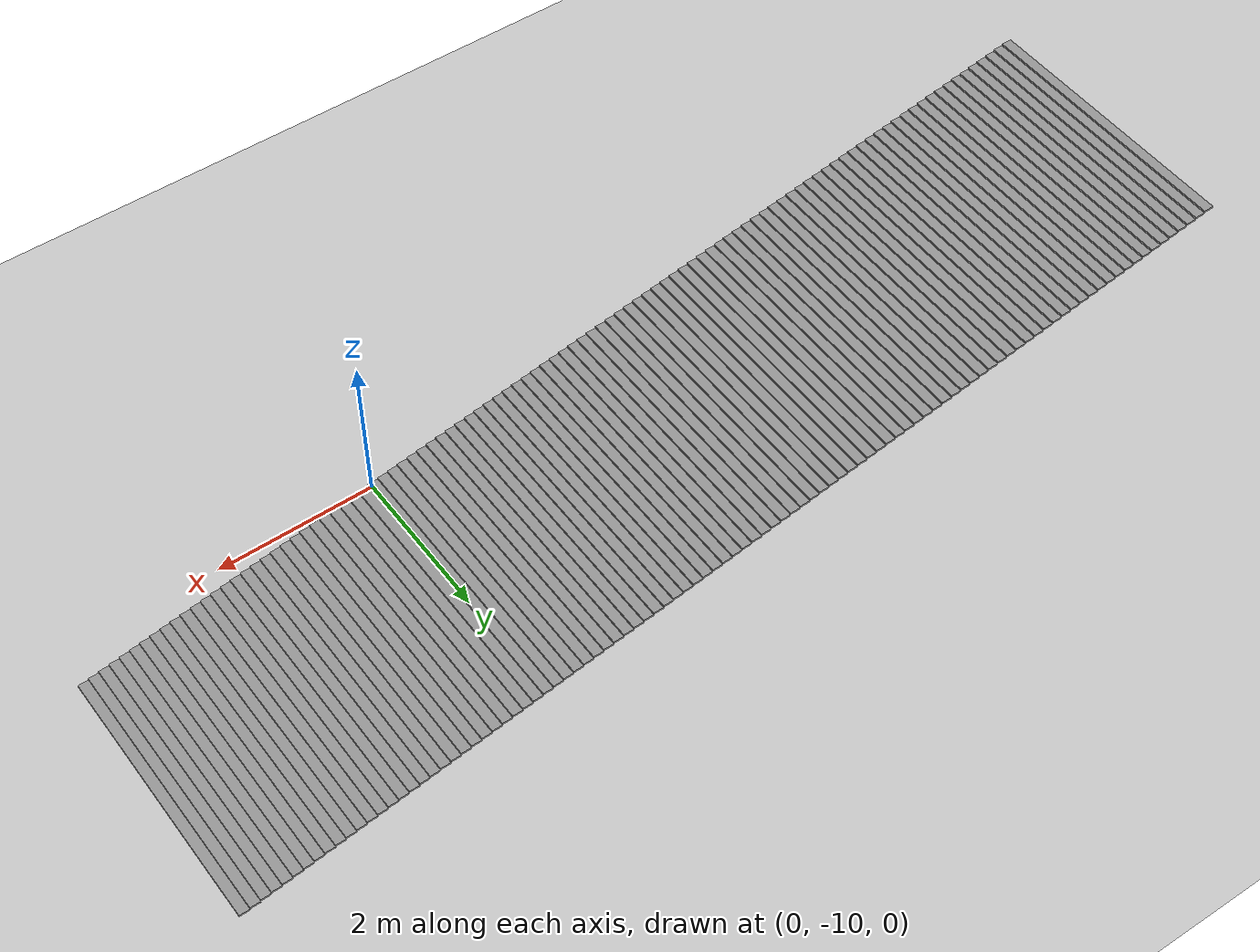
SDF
<sdf version="1.6">
 <world name="default">
  <model name="ground_plane">
   <static>1</static>
   <link name="link">
    <collision name="collision">
     <geometry><plane><normal>0 0 1</normal><size>100 100</size></plane></geometry>
     <surface><friction><ode><mu>100</mu><mu2>50</mu2></ode></friction></surface>
    </collision>
    <visual name="visual">
     <cast_shadows>0</cast_shadows>
     <geometry><plane><normal>0 0 1</normal><size>100 100</size></plane></geometry>
     <material>
      <script><uri>file://media/materials/scripts/gazebo.material</uri><name>Gazebo/Grey</name></script>
     </material>
    </visual>
   </link>
  </model>
  <model name="Ramp">
   <pose>-3.77089 -1.15955 0 0 -0 0</pose>
   <link name="Stairs_1">
    <visual name="Stairs_1_Visual_0">
     <pose>7.69041 -6.6539 0.0125 0 -0 -1.5708</pose>
     <geometry><box><size>3.41406 0.127471 0.025</size></box></geometry>
     <material>
      <script><uri>file://media/materials/scripts/gazebo.material</uri><name>Gazebo/Grey</name></script>
      <ambient>1 1 1 1</ambient>
     </material>
    </visual>
    <collision name="Stairs_1_Collision_0">
     <geometry><box><size>3.41406 0.127471 0.025</size></box></geometry>
     <pose>7.69041 -6.6539 0.0125 0 -0 -1.5708</pose>
    </collision>
    <visual name="Stairs_1_Visual_1">
     <pose>7.56294 -6.6539 0.0375 0 -0 -1.5708</pose>
     <geometry><box><size>3.41406 0.127471 0.025</size></box></geometry>
     <material>
      <script><uri>file://media/materials/scripts/gazebo.material</uri><name>Gazebo/Grey</name></script>
      <ambient>1 1 1 1</ambient>
     </material>
    </visual>
    <collision name="Stairs_1_Collision_1">
     <geometry><box><size>3.41406 0.127471 0.025</size></box></geometry>
     <pose>7.56294 -6.6539 0.0375 0 -0 -1.5708</pose>
    </collision>
    <visual name="Stairs_1_Visual_2">
     <pose>7.43547 -6.6539 0.0625 0 -0 -1.5708</pose>
     <geometry><box><size>3.41406 0.127471 0.025</size></box></geometry>
     <material>
      <script><uri>file://media/materials/scripts/gazebo.material</uri><name>Gazebo/Grey</name></script>
      <ambient>1 1 1 1</ambient>
     </material>
    </visual>
    <collision name="Stairs_1_Collision_2">
     <geometry><box><size>3.41406 0.127471 0.025</size></box></geometry>
     <pose>7.43547 -6.6539 0.0625 0 -0 -1.5708</pose>
    </collision>
    <visual name="Stairs_1_Visual_3">
     <pose>7.308 -6.6539 0.0875 0 -0 -1.5708</pose>
     <geometry><box><size>3.41406 0.127471 0.025</size></box></geometry>
     <material>
      <script><uri>file://media/materials/scripts/gazebo.material</uri><name>Gazebo/Grey</name></script>
      <ambient>1 1 1 1</ambient>
     </material>
    </visual>
    <collision name="Stairs_1_Collision_3">
     <geometry><box><size>3.41406 0.127471 0.025</size></box></geometry>
     <pose>7.308 -6.6539 0.0875 0 -0 -1.5708</pose>
    </collision>
    <visual name="Stairs_1_Visual_4">
     <pose>7.18053 -6.6539 0.1125 0 -0 -1.5708</pose>
     <geometry><box><size>3.41406 0.127471 0.025</size></box></geometry>
     <material>
      <script><uri>file://media/materials/scripts/gazebo.material</uri><name>Gazebo/Grey</name></script>
      <ambient>1 1 1 1</ambient>
     </material>
    </visual>
    <collision name="Stairs_1_Collision_4">
     <geometry><box><size>3.41406 0.127471 0.025</size></box></geometry>
     <pose>7.18053 -6.6539 0.1125 0 -0 -1.5708</pose>
    </collision>
    <visual name="Stairs_1_Visual_5">
     <pose>7.05306 -6.6539 0.1375 0 -0 -1.5708</pose>
     <geometry><box><size>3.41406 0.127471 0.025</size></box></geometry>
     <material>
      <script><uri>file://media/materials/scripts/gazebo.material</uri><name>Gazebo/Grey</name></script>
      <ambient>1 1 1 1</ambient>
     </material>
    </visual>
    <collision name="Stairs_1_Collision_5">
     <geometry><box><size>3.41406 0.127471 0.025</size></box></geometry>
     <pose>7.05306 -6.6539 0.1375 0 -0 -1.5708</pose>
    </collision>
    <visual name="Stairs_1_Visual_6">
     <pose>6.92559 -6.6539 0.1625 0 -0 -1.5708</pose>
     <geometry><box><size>3.41406 0.127471 0.025</size></box></geometry>
     <material>
      <script><uri>file://media/materials/scripts/gazebo.material</uri><name>Gazebo/Grey</name></script>
      <ambient>1 1 1 1</ambient>
     </material>
    </visual>
    <collision name="Stairs_1_Collision_6">
     <geometry><box><size>3.41406 0.127471 0.025</size></box></geometry>
     <pose>6.92559 -6.6539 0.1625 0 -0 -1.5708</pose>
    </collision>
    <visual name="Stairs_1_Visual_7">
     <pose>6.79812 -6.6539 0.1875 0 -0 -1.5708</pose>
     <geometry><box><size>3.41406 0.127471 0.025</size></box></geometry>
     <material>
      <script><uri>file://media/materials/scripts/gazebo.material</uri><name>Gazebo/Grey</name></script>
      <ambient>1 1 1 1</ambient>
     </material>
    </visual>
    <collision name="Stairs_1_Collision_7">
     <geometry><box><size>3.41406 0.127471 0.025</size></box></geometry>
     <pose>6.79812 -6.6539 0.1875 0 -0 -1.5708</pose>
    </collision>
    <visual name="Stairs_1_Visual_8">
     <pose>6.67065 -6.6539 0.2125 0 -0 -1.5708</pose>
     <geometry><box><size>3.41406 0.127471 0.025</size></box></geometry>
     <material>
      <script><uri>file://media/materials/scripts/gazebo.material</uri><name>Gazebo/Grey</name></script>
      <ambient>1 1 1 1</ambient>
     </material>
    </visual>
    <collision name="Stairs_1_Collision_8">
     <geometry><box><size>3.41406 0.127471 0.025</size></box></geometry>
     <pose>6.67065 -6.6539 0.2125 0 -0 -1.5708</pose>
    </collision>
    <visual name="Stairs_1_Visual_9">
     <pose>6.54317 -6.6539 0.2375 0 -0 -1.5708</pose>
     <geometry><box><size>3.41406 0.127471 0.025</size></box></geometry>
     <material>
      <script><uri>file://media/materials/scripts/gazebo.material</uri><name>Gazebo/Grey</name></script>
      <ambient>1 1 1 1</ambient>
     </material>
    </visual>
    <collision name="Stairs_1_Collision_9">
     <geometry><box><size>3.41406 0.127471 0.025</size></box></geometry>
     <pose>6.54317 -6.6539 0.2375 0 -0 -1.5708</pose>
    </collision>
    <visual name="Stairs_1_Visual_10">
     <pose>6.4157 -6.6539 0.2625 0 -0 -1.5708</pose>
     <geometry><box><size>3.41406 0.127471 0.025</size></box></geometry>
     <material>
      <script><uri>file://media/materials/scripts/gazebo.material</uri><name>Gazebo/Grey</name></script>
      <ambient>1 1 1 1</ambient>
     </material>
    </visual>
    <collision name="Stairs_1_Collision_10">
     <geometry><box><size>3.41406 0.127471 0.025</size></box></geometry>
     <pose>6.4157 -6.6539 0.2625 0 -0 -1.5708</pose>
    </collision>
    <visual name="Stairs_1_Visual_11">
     <pose>6.28823 -6.6539 0.2875 0 -0 -1.5708</pose>
     <geometry><box><size>3.41406 0.127471 0.025</size></box></geometry>
     <material>
      <script><uri>file://media/materials/scripts/gazebo.material</uri><name>Gazebo/Grey</name></script>
      <ambient>1 1 1 1</ambient>
     </material>
    </visual>
    <collision name="Stairs_1_Collision_11">
     <geometry><box><size>3.41406 0.127471 0.025</size></box></geometry>
     <pose>6.28823 -6.6539 0.2875 0 -0 -1.5708</pose>
    </collision>
    <visual name="Stairs_1_Visual_12">
     <pose>6.16076 -6.6539 0.3125 0 -0 -1.5708</pose>
     <geometry><box><size>3.41406 0.127471 0.025</size></box></geometry>
     <material>
      <script><uri>file://media/materials/scripts/gazebo.material</uri><name>Gazebo/Grey</name></script>
      <ambient>1 1 1 1</ambient>
     </material>
    </visual>
    <collision name="Stairs_1_Collision_12">
     <geometry><box><size>3.41406 0.127471 0.025</size></box></geometry>
     <pose>6.16076 -6.6539 0.3125 0 -0 -1.5708</pose>
    </collision>
    <visual name="Stairs_1_Visual_13">
     <pose>6.03329 -6.6539 0.3375 0 -0 -1.5708</pose>
     <geometry><box><size>3.41406 0.127471 0.025</size></box></geometry>
     <material>
      <script><uri>file://media/materials/scripts/gazebo.material</uri><name>Gazebo/Grey</name></script>
      <ambient>1 1 1 1</ambient>
     </material>
    </visual>
    <collision name="Stairs_1_Collision_13">
     <geometry><box><size>3.41406 0.127471 0.025</size></box></geometry>
     <pose>6.03329 -6.6539 0.3375 0 -0 -1.5708</pose>
    </collision>
    <visual name="Stairs_1_Visual_14">
     <pose>5.90582 -6.6539 0.3625 0 -0 -1.5708</pose>
     <geometry><box><size>3.41406 0.127471 0.025</size></box></geometry>
     <material>
      <script><uri>file://media/materials/scripts/gazebo.material</uri><name>Gazebo/Grey</name></script>
      <ambient>1 1 1 1</ambient>
     </material>
    </visual>
    <collision name="Stairs_1_Collision_14">
     <geometry><box><size>3.41406 0.127471 0.025</size></box></geometry>
     <pose>5.90582 -6.6539 0.3625 0 -0 -1.5708</pose>
    </collision>
    <visual name="Stairs_1_Visual_15">
     <pose>5.77835 -6.6539 0.3875 0 -0 -1.5708</pose>
     <geometry><box><size>3.41406 0.127471 0.025</size></box></geometry>
     <material>
      <script><uri>file://media/materials/scripts/gazebo.material</uri><name>Gazebo/Grey</name></script>
      <ambient>1 1 1 1</ambient>
     </material>
    </visual>
    <collision name="Stairs_1_Collision_15">
     <geometry><box><size>3.41406 0.127471 0.025</size></box></geometry>
     <pose>5.77835 -6.6539 0.3875 0 -0 -1.5708</pose>
    </collision>
    <visual name="Stairs_1_Visual_16">
     <pose>5.65088 -6.6539 0.4125 0 -0 -1.5708</pose>
     <geometry><box><size>3.41406 0.127471 0.025</size></box></geometry>
     <material>
      <script><uri>file://media/materials/scripts/gazebo.material</uri><name>Gazebo/Grey</name></script>
      <ambient>1 1 1 1</ambient>
     </material>
    </visual>
    <collision name="Stairs_1_Collision_16">
     <geometry><box><size>3.41406 0.127471 0.025</size></box></geometry>
     <pose>5.65088 -6.6539 0.4125 0 -0 -1.5708</pose>
    </collision>
    <visual name="Stairs_1_Visual_17">
     <pose>5.52341 -6.6539 0.4375 0 -0 -1.5708</pose>
     <geometry><box><size>3.41406 0.127471 0.025</size></box></geometry>
     <material>
      <script><uri>file://media/materials/scripts/gazebo.material</uri><name>Gazebo/Grey</name></script>
      <ambient>1 1 1 1</ambient>
     </material>
    </visual>
    <collision name="Stairs_1_Collision_17">
     <geometry><box><size>3.41406 0.127471 0.025</size></box></geometry>
     <pose>5.52341 -6.6539 0.4375 0 -0 -1.5708</pose>
    </collision>
    <visual name="Stairs_1_Visual_18">
     <pose>5.39594 -6.6539 0.4625 0 -0 -1.5708</pose>
     <geometry><box><size>3.41406 0.127471 0.025</size></box></geometry>
     <material>
      <script><uri>file://media/materials/scripts/gazebo.material</uri><name>Gazebo/Grey</name></script>
      <ambient>1 1 1 1</ambient>
     </material>
    </visual>
    <collision name="Stairs_1_Collision_18">
     <geometry><box><size>3.41406 0.127471 0.025</size></box></geometry>
     <pose>5.39594 -6.6539 0.4625 0 -0 -1.5708</pose>
    </collision>
    <visual name="Stairs_1_Visual_19">
     <pose>5.26847 -6.6539 0.4875 0 -0 -1.5708</pose>
     <geometry><box><size>3.41406 0.127471 0.025</size></box></geometry>
     <material>
      <script><uri>file://media/materials/scripts/gazebo.material</uri><name>Gazebo/Grey</name></script>
      <ambient>1 1 1 1</ambient>
     </material>
    </visual>
    <collision name="Stairs_1_Collision_19">
     <geometry><box><size>3.41406 0.127471 0.025</size></box></geometry>
     <pose>5.26847 -6.6539 0.4875 0 -0 -1.5708</pose>
    </collision>
    <visual name="Stairs_1_Visual_20">
     <pose>5.14099 -6.6539 0.5125 0 -0 -1.5708</pose>
     <geometry><box><size>3.41406 0.127471 0.025</size></box></geometry>
     <material>
      <script><uri>file://media/materials/scripts/gazebo.material</uri><name>Gazebo/Grey</name></script>
      <ambient>1 1 1 1</ambient>
     </material>
    </visual>
    <collision name="Stairs_1_Collision_20">
     <geometry><box><size>3.41406 0.127471 0.025</size></box></geometry>
     <pose>5.14099 -6.6539 0.5125 0 -0 -1.5708</pose>
    </collision>
    <visual name="Stairs_1_Visual_21">
     <pose>5.01352 -6.6539 0.5375 0 -0 -1.5708</pose>
     <geometry><box><size>3.41406 0.127471 0.025</size></box></geometry>
     <material>
      <script><uri>file://media/materials/scripts/gazebo.material</uri><name>Gazebo/Grey</name></script>
      <ambient>1 1 1 1</ambient>
     </material>
    </visual>
    <collision name="Stairs_1_Collision_21">
     <geometry><box><size>3.41406 0.127471 0.025</size></box></geometry>
     <pose>5.01352 -6.6539 0.5375 0 -0 -1.5708</pose>
    </collision>
    <visual name="Stairs_1_Visual_22">
     <pose>4.88605 -6.6539 0.5625 0 -0 -1.5708</pose>
     <geometry><box><size>3.41406 0.127471 0.025</size></box></geometry>
     <material>
      <script><uri>file://media/materials/scripts/gazebo.material</uri><name>Gazebo/Grey</name></script>
      <ambient>1 1 1 1</ambient>
     </material>
    </visual>
    <collision name="Stairs_1_Collision_22">
     <geometry><box><size>3.41406 0.127471 0.025</size></box></geometry>
     <pose>4.88605 -6.6539 0.5625 0 -0 -1.5708</pose>
    </collision>
    <visual name="Stairs_1_Visual_23">
     <pose>4.75858 -6.6539 0.5875 0 -0 -1.5708</pose>
     <geometry><box><size>3.41406 0.127471 0.025</size></box></geometry>
     <material>
      <script><uri>file://media/materials/scripts/gazebo.material</uri><name>Gazebo/Grey</name></script>
      <ambient>1 1 1 1</ambient>
     </material>
    </visual>
    <collision name="Stairs_1_Collision_23">
     <geometry><box><size>3.41406 0.127471 0.025</size></box></geometry>
     <pose>4.75858 -6.6539 0.5875 0 -0 -1.5708</pose>
    </collision>
    <visual name="Stairs_1_Visual_24">
     <pose>4.63111 -6.6539 0.6125 0 -0 -1.5708</pose>
     <geometry><box><size>3.41406 0.127471 0.025</size></box></geometry>
     <material>
      <script><uri>file://media/materials/scripts/gazebo.material</uri><name>Gazebo/Grey</name></script>
      <ambient>1 1 1 1</ambient>
     </material>
    </visual>
    <collision name="Stairs_1_Collision_24">
     <geometry><box><size>3.41406 0.127471 0.025</size></box></geometry>
     <pose>4.63111 -6.6539 0.6125 0 -0 -1.5708</pose>
    </collision>
    <visual name="Stairs_1_Visual_25">
     <pose>4.50364 -6.6539 0.6375 0 -0 -1.5708</pose>
     <geometry><box><size>3.41406 0.127471 0.025</size></box></geometry>
     <material>
      <script><uri>file://media/materials/scripts/gazebo.material</uri><name>Gazebo/Grey</name></script>
      <ambient>1 1 1 1</ambient>
     </material>
    </visual>
    <collision name="Stairs_1_Collision_25">
     <geometry><box><size>3.41406 0.127471 0.025</size></box></geometry>
     <pose>4.50364 -6.6539 0.6375 0 -0 -1.5708</pose>
    </collision>
    <visual name="Stairs_1_Visual_26">
     <pose>4.37617 -6.6539 0.6625 0 -0 -1.5708</pose>
     <geometry><box><size>3.41406 0.127471 0.025</size></box></geometry>
     <material>
      <script><uri>file://media/materials/scripts/gazebo.material</uri><name>Gazebo/Grey</name></script>
      <ambient>1 1 1 1</ambient>
     </material>
    </visual>
    <collision name="Stairs_1_Collision_26">
     <geometry><box><size>3.41406 0.127471 0.025</size></box></geometry>
     <pose>4.37617 -6.6539 0.6625 0 -0 -1.5708</pose>
    </collision>
    <visual name="Stairs_1_Visual_27">
     <pose>4.2487 -6.6539 0.6875 0 -0 -1.5708</pose>
     <geometry><box><size>3.41406 0.127471 0.025</size></box></geometry>
     <material>
      <script><uri>file://media/materials/scripts/gazebo.material</uri><name>Gazebo/Grey</name></script>
      <ambient>1 1 1 1</ambient>
     </material>
    </visual>
    <collision name="Stairs_1_Collision_27">
     <geometry><box><size>3.41406 0.127471 0.025</size></box></geometry>
     <pose>4.2487 -6.6539 0.6875 0 -0 -1.5708</pose>
    </collision>
    <visual name="Stairs_1_Visual_28">
     <pose>4.12123 -6.6539 0.7125 0 -0 -1.5708</pose>
     <geometry><box><size>3.41406 0.127471 0.025</size></box></geometry>
     <material>
      <script><uri>file://media/materials/scripts/gazebo.material</uri><name>Gazebo/Grey</name></script>
      <ambient>1 1 1 1</ambient>
     </material>
    </visual>
    <collision name="Stairs_1_Collision_28">
     <geometry><box><size>3.41406 0.127471 0.025</size></box></geometry>
     <pose>4.12123 -6.6539 0.7125 0 -0 -1.5708</pose>
    </collision>
    <visual name="Stairs_1_Visual_29">
     <pose>3.99376 -6.6539 0.7375 0 -0 -1.5708</pose>
     <geometry><box><size>3.41406 0.127471 0.025</size></box></geometry>
     <material>
      <script><uri>file://media/materials/scripts/gazebo.material</uri><name>Gazebo/Grey</name></script>
      <ambient>1 1 1 1</ambient>
     </material>
    </visual>
    <collision name="Stairs_1_Collision_29">
     <geometry><box><size>3.41406 0.127471 0.025</size></box></geometry>
     <pose>3.99376 -6.6539 0.7375 0 -0 -1.5708</pose>
    </collision>
    <visual name="Stairs_1_Visual_30">
     <pose>3.86628 -6.6539 0.7625 0 -0 -1.5708</pose>
     <geometry><box><size>3.41406 0.127471 0.025</size></box></geometry>
     <material>
      <script><uri>file://media/materials/scripts/gazebo.material</uri><name>Gazebo/Grey</name></script>
      <ambient>1 1 1 1</ambient>
     </material>
    </visual>
    <collision name="Stairs_1_Collision_30">
     <geometry><box><size>3.41406 0.127471 0.025</size></box></geometry>
     <pose>3.86628 -6.6539 0.7625 0 -0 -1.5708</pose>
    </collision>
    <visual name="Stairs_1_Visual_31">
     <pose>3.73881 -6.6539 0.7875 0 -0 -1.5708</pose>
     <geometry><box><size>3.41406 0.127471 0.025</size></box></geometry>
     <material>
      <script><uri>file://media/materials/scripts/gazebo.material</uri><name>Gazebo/Grey</name></script>
      <ambient>1 1 1 1</ambient>
     </material>
    </visual>
    <collision name="Stairs_1_Collision_31">
     <geometry><box><size>3.41406 0.127471 0.025</size></box></geometry>
     <pose>3.73881 -6.6539 0.7875 0 -0 -1.5708</pose>
    </collision>
    <visual name="Stairs_1_Visual_32">
     <pose>3.61134 -6.6539 0.8125 0 -0 -1.5708</pose>
     <geometry><box><size>3.41406 0.127471 0.025</size></box></geometry>
     <material>
      <script><uri>file://media/materials/scripts/gazebo.material</uri><name>Gazebo/Grey</name></script>
      <ambient>1 1 1 1</ambient>
     </material>
    </visual>
    <collision name="Stairs_1_Collision_32">
     <geometry><box><size>3.41406 0.127471 0.025</size></box></geometry>
     <pose>3.61134 -6.6539 0.8125 0 -0 -1.5708</pose>
    </collision>
    <visual name="Stairs_1_Visual_33">
     <pose>3.48387 -6.6539 0.8375 0 -0 -1.5708</pose>
     <geometry><box><size>3.41406 0.127471 0.025</size></box></geometry>
     <material>
      <script><uri>file://media/materials/scripts/gazebo.material</uri><name>Gazebo/Grey</name></script>
      <ambient>1 1 1 1</ambient>
     </material>
    </visual>
    <collision name="Stairs_1_Collision_33">
     <geometry><box><size>3.41406 0.127471 0.025</size></box></geometry>
     <pose>3.48387 -6.6539 0.8375 0 -0 -1.5708</pose>
    </collision>
    <visual name="Stairs_1_Visual_34">
     <pose>3.3564 -6.6539 0.8625 0 -0 -1.5708</pose>
     <geometry><box><size>3.41406 0.127471 0.025</size></box></geometry>
     <material>
      <script><uri>file://media/materials/scripts/gazebo.material</uri><name>Gazebo/Grey</name></script>
      <ambient>1 1 1 1</ambient>
     </material>
    </visual>
    <collision name="Stairs_1_Collision_34">
     <geometry><box><size>3.41406 0.127471 0.025</size></box></geometry>
     <pose>3.3564 -6.6539 0.8625 0 -0 -1.5708</pose>
    </collision>
    <visual name="Stairs_1_Visual_35">
     <pose>3.22893 -6.6539 0.8875 0 -0 -1.5708</pose>
     <geometry><box><size>3.41406 0.127471 0.025</size></box></geometry>
     <material>
      <script><uri>file://media/materials/scripts/gazebo.material</uri><name>Gazebo/Grey</name></script>
      <ambient>1 1 1 1</ambient>
     </material>
    </visual>
    <collision name="Stairs_1_Collision_35">
     <geometry><box><size>3.41406 0.127471 0.025</size></box></geometry>
     <pose>3.22893 -6.6539 0.8875 0 -0 -1.5708</pose>
    </collision>
    <visual name="Stairs_1_Visual_36">
     <pose>3.10146 -6.6539 0.9125 0 -0 -1.5708</pose>
     <geometry><box><size>3.41406 0.127471 0.025</size></box></geometry>
     <material>
      <script><uri>file://media/materials/scripts/gazebo.material</uri><name>Gazebo/Grey</name></script>
      <ambient>1 1 1 1</ambient>
     </material>
    </visual>
    <collision name="Stairs_1_Collision_36">
     <geometry><box><size>3.41406 0.127471 0.025</size></box></geometry>
     <pose>3.10146 -6.6539 0.9125 0 -0 -1.5708</pose>
    </collision>
    <visual name="Stairs_1_Visual_37">
     <pose>2.97399 -6.6539 0.9375 0 -0 -1.5708</pose>
     <geometry><box><size>3.41406 0.127471 0.025</size></box></geometry>
     <material>
      <script><uri>file://media/materials/scripts/gazebo.material</uri><name>Gazebo/Grey</name></script>
      <ambient>1 1 1 1</ambient>
     </material>
    </visual>
    <collision name="Stairs_1_Collision_37">
     <geometry><box><size>3.41406 0.127471 0.025</size></box></geometry>
     <pose>2.97399 -6.6539 0.9375 0 -0 -1.5708</pose>
    </collision>
    <visual name="Stairs_1_Visual_38">
     <pose>2.84652 -6.6539 0.9625 0 -0 -1.5708</pose>
     <geometry><box><size>3.41406 0.127471 0.025</size></box></geometry>
     <material>
      <script><uri>file://media/materials/scripts/gazebo.material</uri><name>Gazebo/Grey</name></script>
      <ambient>1 1 1 1</ambient>
     </material>
    </visual>
    <collision name="Stairs_1_Collision_38">
     <geometry><box><size>3.41406 0.127471 0.025</size></box></geometry>
     <pose>2.84652 -6.6539 0.9625 0 -0 -1.5708</pose>
    </collision>
    <visual name="Stairs_1_Visual_39">
     <pose>2.71905 -6.6539 0.9875 0 -0 -1.5708</pose>
     <geometry><box><size>3.41406 0.127471 0.025</size></box></geometry>
     <material>
      <script><uri>file://media/materials/scripts/gazebo.material</uri><name>Gazebo/Grey</name></script>
      <ambient>1 1 1 1</ambient>
     </material>
    </visual>
    <collision name="Stairs_1_Collision_39">
     <geometry><box><size>3.41406 0.127471 0.025</size></box></geometry>
     <pose>2.71905 -6.6539 0.9875 0 -0 -1.5708</pose>
    </collision>
    <visual name="Stairs_1_Visual_40">
     <pose>2.59158 -6.6539 1.0125 0 -0 -1.5708</pose>
     <geometry><box><size>3.41406 0.127471 0.025</size></box></geometry>
     <material>
      <script><uri>file://media/materials/scripts/gazebo.material</uri><name>Gazebo/Grey</name></script>
      <ambient>1 1 1 1</ambient>
     </material>
    </visual>
    <collision name="Stairs_1_Collision_40">
     <geometry><box><size>3.41406 0.127471 0.025</size></box></geometry>
     <pose>2.59158 -6.6539 1.0125 0 -0 -1.5708</pose>
    </collision>
    <visual name="Stairs_1_Visual_41">
     <pose>2.4641 -6.6539 1.0375 0 -0 -1.5708</pose>
     <geometry><box><size>3.41406 0.127471 0.025</size></box></geometry>
     <material>
      <script><uri>file://media/materials/scripts/gazebo.material</uri><name>Gazebo/Grey</name></script>
      <ambient>1 1 1 1</ambient>
     </material>
    </visual>
    <collision name="Stairs_1_Collision_41">
     <geometry><box><size>3.41406 0.127471 0.025</size></box></geometry>
     <pose>2.4641 -6.6539 1.0375 0 -0 -1.5708</pose>
    </collision>
    <visual name="Stairs_1_Visual_42">
     <pose>2.33663 -6.6539 1.0625 0 -0 -1.5708</pose>
     <geometry><box><size>3.41406 0.127471 0.025</size></box></geometry>
     <material>
      <script><uri>file://media/materials/scripts/gazebo.material</uri><name>Gazebo/Grey</name></script>
      <ambient>1 1 1 1</ambient>
     </material>
    </visual>
    <collision name="Stairs_1_Collision_42">
     <geometry><box><size>3.41406 0.127471 0.025</size></box></geometry>
     <pose>2.33663 -6.6539 1.0625 0 -0 -1.5708</pose>
    </collision>
    <visual name="Stairs_1_Visual_43">
     <pose>2.20916 -6.6539 1.0875 0 -0 -1.5708</pose>
     <geometry><box><size>3.41406 0.127471 0.025</size></box></geometry>
     <material>
      <script><uri>file://media/materials/scripts/gazebo.material</uri><name>Gazebo/Grey</name></script>
      <ambient>1 1 1 1</ambient>
     </material>
    </visual>
    <collision name="Stairs_1_Collision_43">
     <geometry><box><size>3.41406 0.127471 0.025</size></box></geometry>
     <pose>2.20916 -6.6539 1.0875 0 -0 -1.5708</pose>
    </collision>
    <visual name="Stairs_1_Visual_44">
     <pose>2.08169 -6.6539 1.1125 0 -0 -1.5708</pose>
     <geometry><box><size>3.41406 0.127471 0.025</size></box></geometry>
     <material>
      <script><uri>file://media/materials/scripts/gazebo.material</uri><name>Gazebo/Grey</name></script>
      <ambient>1 1 1 1</ambient>
     </material>
    </visual>
    <collision name="Stairs_1_Collision_44">
     <geometry><box><size>3.41406 0.127471 0.025</size></box></geometry>
     <pose>2.08169 -6.6539 1.1125 0 -0 -1.5708</pose>
    </collision>
    <visual name="Stairs_1_Visual_45">
     <pose>1.95422 -6.6539 1.1375 0 -0 -1.5708</pose>
     <geometry><box><size>3.41406 0.127471 0.025</size></box></geometry>
     <material>
      <script><uri>file://media/materials/scripts/gazebo.material</uri><name>Gazebo/Grey</name></script>
      <ambient>1 1 1 1</ambient>
     </material>
    </visual>
    <collision name="Stairs_1_Collision_45">
     <geometry><box><size>3.41406 0.127471 0.025</size></box></geometry>
     <pose>1.95422 -6.6539 1.1375 0 -0 -1.5708</pose>
    </collision>
    <visual name="Stairs_1_Visual_46">
     <pose>1.82675 -6.6539 1.1625 0 -0 -1.5708</pose>
     <geometry><box><size>3.41406 0.127471 0.025</size></box></geometry>
     <material>
      <script><uri>file://media/materials/scripts/gazebo.material</uri><name>Gazebo/Grey</name></script>
      <ambient>1 1 1 1</ambient>
     </material>
    </visual>
    <collision name="Stairs_1_Collision_46">
     <geometry><box><size>3.41406 0.127471 0.025</size></box></geometry>
     <pose>1.82675 -6.6539 1.1625 0 -0 -1.5708</pose>
    </collision>
    <visual name="Stairs_1_Visual_47">
     <pose>1.69928 -6.6539 1.1875 0 -0 -1.5708</pose>
     <geometry><box><size>3.41406 0.127471 0.025</size></box></geometry>
     <material>
      <script><uri>file://media/materials/scripts/gazebo.material</uri><name>Gazebo/Grey</name></script>
      <ambient>1 1 1 1</ambient>
     </material>
    </visual>
    <collision name="Stairs_1_Collision_47">
     <geometry><box><size>3.41406 0.127471 0.025</size></box></geometry>
     <pose>1.69928 -6.6539 1.1875 0 -0 -1.5708</pose>
    </collision>
    <visual name="Stairs_1_Visual_48">
     <pose>1.57181 -6.6539 1.2125 0 -0 -1.5708</pose>
     <geometry><box><size>3.41406 0.127471 0.025</size></box></geometry>
     <material>
      <script><uri>file://media/materials/scripts/gazebo.material</uri><name>Gazebo/Grey</name></script>
      <ambient>1 1 1 1</ambient>
     </material>
    </visual>
    <collision name="Stairs_1_Collision_48">
     <geometry><box><size>3.41406 0.127471 0.025</size></box></geometry>
     <pose>1.57181 -6.6539 1.2125 0 -0 -1.5708</pose>
    </collision>
    <visual name="Stairs_1_Visual_49">
     <pose>1.44434 -6.6539 1.2375 0 -0 -1.5708</pose>
     <geometry><box><size>3.41406 0.127471 0.025</size></box></geometry>
     <material>
      <script><uri>file://media/materials/scripts/gazebo.material</uri><name>Gazebo/Grey</name></script>
      <ambient>1 1 1 1</ambient>
     </material>
    </visual>
    <collision name="Stairs_1_Collision_49">
     <geometry><box><size>3.41406 0.127471 0.025</size></box></geometry>
     <pose>1.44434 -6.6539 1.2375 0 -0 -1.5708</pose>
    </collision>
    <visual name="Stairs_1_Visual_50">
     <pose>1.31687 -6.6539 1.2625 0 -0 -1.5708</pose>
     <geometry><box><size>3.41406 0.127471 0.025</size></box></geometry>
     <material>
      <script><uri>file://media/materials/scripts/gazebo.material</uri><name>Gazebo/Grey</name></script>
      <ambient>1 1 1 1</ambient>
     </material>
    </visual>
    <collision name="Stairs_1_Collision_50">
     <geometry><box><size>3.41406 0.127471 0.025</size></box></geometry>
     <pose>1.31687 -6.6539 1.2625 0 -0 -1.5708</pose>
    </collision>
    <visual name="Stairs_1_Visual_51">
     <pose>1.18939 -6.6539 1.2875 0 -0 -1.5708</pose>
     <geometry><box><size>3.41406 0.127471 0.025</size></box></geometry>
     <material>
      <script><uri>file://media/materials/scripts/gazebo.material</uri><name>Gazebo/Grey</name></script>
      <ambient>1 1 1 1</ambient>
     </material>
    </visual>
    <collision name="Stairs_1_Collision_51">
     <geometry><box><size>3.41406 0.127471 0.025</size></box></geometry>
     <pose>1.18939 -6.6539 1.2875 0 -0 -1.5708</pose>
    </collision>
    <visual name="Stairs_1_Visual_52">
     <pose>1.06192 -6.6539 1.3125 0 -0 -1.5708</pose>
     <geometry><box><size>3.41406 0.127471 0.025</size></box></geometry>
     <material>
      <script><uri>file://media/materials/scripts/gazebo.material</uri><name>Gazebo/Grey</name></script>
      <ambient>1 1 1 1</ambient>
     </material>
    </visual>
    <collision name="Stairs_1_Collision_52">
     <geometry><box><size>3.41406 0.127471 0.025</size></box></geometry>
     <pose>1.06192 -6.6539 1.3125 0 -0 -1.5708</pose>
    </collision>
    <visual name="Stairs_1_Visual_53">
     <pose>0.934453 -6.6539 1.3375 0 -0 -1.5708</pose>
     <geometry><box><size>3.41406 0.127471 0.025</size></box></geometry>
     <material>
      <script><uri>file://media/materials/scripts/gazebo.material</uri><name>Gazebo/Grey</name></script>
      <ambient>1 1 1 1</ambient>
     </material>
    </visual>
    <collision name="Stairs_1_Collision_53">
     <geometry><box><size>3.41406 0.127471 0.025</size></box></geometry>
     <pose>0.934453 -6.6539 1.3375 0 -0 -1.5708</pose>
    </collision>
    <visual name="Stairs_1_Visual_54">
     <pose>0.806982 -6.6539 1.3625 0 -0 -1.5708</pose>
     <geometry><box><size>3.41406 0.127471 0.025</size></box></geometry>
     <material>
      <script><uri>file://media/materials/scripts/gazebo.material</uri><name>Gazebo/Grey</name></script>
      <ambient>1 1 1 1</ambient>
     </material>
    </visual>
    <collision name="Stairs_1_Collision_54">
     <geometry><box><size>3.41406 0.127471 0.025</size></box></geometry>
     <pose>0.806982 -6.6539 1.3625 0 -0 -1.5708</pose>
    </collision>
    <visual name="Stairs_1_Visual_55">
     <pose>0.679511 -6.6539 1.3875 0 -0 -1.5708</pose>
     <geometry><box><size>3.41406 0.127471 0.025</size></box></geometry>
     <material>
      <script><uri>file://media/materials/scripts/gazebo.material</uri><name>Gazebo/Grey</name></script>
      <ambient>1 1 1 1</ambient>
     </material>
    </visual>
    <collision name="Stairs_1_Collision_55">
     <geometry><box><size>3.41406 0.127471 0.025</size></box></geometry>
     <pose>0.679511 -6.6539 1.3875 0 -0 -1.5708</pose>
    </collision>
    <visual name="Stairs_1_Visual_56">
     <pose>0.55204 -6.6539 1.4125 0 -0 -1.5708</pose>
     <geometry><box><size>3.41406 0.127471 0.025</size></box></geometry>
     <material>
      <script><uri>file://media/materials/scripts/gazebo.material</uri><name>Gazebo/Grey</name></script>
      <ambient>1 1 1 1</ambient>
     </material>
    </visual>
    <collision name="Stairs_1_Collision_56">
     <geometry><box><size>3.41406 0.127471 0.025</size></box></geometry>
     <pose>0.55204 -6.6539 1.4125 0 -0 -1.5708</pose>
    </collision>
    <visual name="Stairs_1_Visual_57">
     <pose>0.424569 -6.6539 1.4375 0 -0 -1.5708</pose>
     <geometry><box><size>3.41406 0.127471 0.025</size></box></geometry>
     <material>
      <script><uri>file://media/materials/scripts/gazebo.material</uri><name>Gazebo/Grey</name></script>
      <ambient>1 1 1 1</ambient>
     </material>
    </visual>
    <collision name="Stairs_1_Collision_57">
     <geometry><box><size>3.41406 0.127471 0.025</size></box></geometry>
     <pose>0.424569 -6.6539 1.4375 0 -0 -1.5708</pose>
    </collision>
    <visual name="Stairs_1_Visual_58">
     <pose>0.297099 -6.6539 1.4625 0 -0 -1.5708</pose>
     <geometry><box><size>3.41406 0.127471 0.025</size></box></geometry>
     <material>
      <script><uri>file://media/materials/scripts/gazebo.material</uri><name>Gazebo/Grey</name></script>
      <ambient>1 1 1 1</ambient>
     </material>
    </visual>
    <collision name="Stairs_1_Collision_58">
     <geometry><box><size>3.41406 0.127471 0.025</size></box></geometry>
     <pose>0.297099 -6.6539 1.4625 0 -0 -1.5708</pose>
    </collision>
    <visual name="Stairs_1_Visual_59">
     <pose>0.169627 -6.6539 1.4875 0 -0 -1.5708</pose>
     <geometry><box><size>3.41406 0.127471 0.025</size></box></geometry>
     <material>
      <script><uri>file://media/materials/scripts/gazebo.material</uri><name>Gazebo/Grey</name></script>
      <ambient>1 1 1 1</ambient>
     </material>
    </visual>
    <collision name="Stairs_1_Collision_59">
     <geometry><box><size>3.41406 0.127471 0.025</size></box></geometry>
     <pose>0.169627 -6.6539 1.4875 0 -0 -1.5708</pose>
    </collision>
    <visual name="Stairs_1_Visual_60">
     <pose>0.042157 -6.6539 1.5125 0 -0 -1.5708</pose>
     <geometry><box><size>3.41406 0.127471 0.025</size></box></geometry>
     <material>
      <script><uri>file://media/materials/scripts/gazebo.material</uri><name>Gazebo/Grey</name></script>
      <ambient>1 1 1 1</ambient>
     </material>
    </visual>
    <collision name="Stairs_1_Collision_60">
     <geometry><box><size>3.41406 0.127471 0.025</size></box></geometry>
     <pose>0.042157 -6.6539 1.5125 0 -0 -1.5708</pose>
    </collision>
    <visual name="Stairs_1_Visual_61">
     <pose>-0.085315 -6.6539 1.5375 0 -0 -1.5708</pose>
     <geometry><box><size>3.41406 0.127471 0.025</size></box></geometry>
     <material>
      <script><uri>file://media/materials/scripts/gazebo.material</uri><name>Gazebo/Grey</name></script>
      <ambient>1 1 1 1</ambient>
     </material>
    </visual>
    <collision name="Stairs_1_Collision_61">
     <geometry><box><size>3.41406 0.127471 0.025</size></box></geometry>
     <pose>-0.085315 -6.6539 1.5375 0 -0 -1.5708</pose>
    </collision>
    <visual name="Stairs_1_Visual_62">
     <pose>-0.212785 -6.6539 1.5625 0 -0 -1.5708</pose>
     <geometry><box><size>3.41406 0.127471 0.025</size></box></geometry>
     <material>
      <script><uri>file://media/materials/scripts/gazebo.material</uri><name>Gazebo/Grey</name></script>
      <ambient>1 1 1 1</ambient>
     </material>
    </visual>
    <collision name="Stairs_1_Collision_62">
     <geometry><box><size>3.41406 0.127471 0.025</size></box></geometry>
     <pose>-0.212785 -6.6539 1.5625 0 -0 -1.5708</pose>
    </collision>
    <visual name="Stairs_1_Visual_63">
     <pose>-0.340256 -6.6539 1.5875 0 -0 -1.5708</pose>
     <geometry><box><size>3.41406 0.127471 0.025</size></box></geometry>
     <material>
      <script><uri>file://media/materials/scripts/gazebo.material</uri><name>Gazebo/Grey</name></script>
      <ambient>1 1 1 1</ambient>
     </material>
    </visual>
    <collision name="Stairs_1_Collision_63">
     <geometry><box><size>3.41406 0.127471 0.025</size></box></geometry>
     <pose>-0.340256 -6.6539 1.5875 0 -0 -1.5708</pose>
    </collision>
    <visual name="Stairs_1_Visual_64">
     <pose>-0.467727 -6.6539 1.6125 0 -0 -1.5708</pose>
     <geometry><box><size>3.41406 0.127471 0.025</size></box></geometry>
     <material>
      <script><uri>file://media/materials/scripts/gazebo.material</uri><name>Gazebo/Grey</name></script>
      <ambient>1 1 1 1</ambient>
     </material>
    </visual>
    <collision name="Stairs_1_Collision_64">
     <geometry><box><size>3.41406 0.127471 0.025</size></box></geometry>
     <pose>-0.467727 -6.6539 1.6125 0 -0 -1.5708</pose>
    </collision>
    <visual name="Stairs_1_Visual_65">
     <pose>-0.595198 -6.6539 1.6375 0 -0 -1.5708</pose>
     <geometry><box><size>3.41406 0.127471 0.025</size></box></geometry>
     <material>
      <script><uri>file://media/materials/scripts/gazebo.material</uri><name>Gazebo/Grey</name></script>
      <ambient>1 1 1 1</ambient>
     </material>
    </visual>
    <collision name="Stairs_1_Collision_65">
     <geometry><box><size>3.41406 0.127471 0.025</size></box></geometry>
     <pose>-0.595198 -6.6539 1.6375 0 -0 -1.5708</pose>
    </collision>
    <visual name="Stairs_1_Visual_66">
     <pose>-0.722669 -6.6539 1.6625 0 -0 -1.5708</pose>
     <geometry><box><size>3.41406 0.127471 0.025</size></box></geometry>
     <material>
      <script><uri>file://media/materials/scripts/gazebo.material</uri><name>Gazebo/Grey</name></script>
      <ambient>1 1 1 1</ambient>
     </material>
    </visual>
    <collision name="Stairs_1_Collision_66">
     <geometry><box><size>3.41406 0.127471 0.025</size></box></geometry>
     <pose>-0.722669 -6.6539 1.6625 0 -0 -1.5708</pose>
    </collision>
    <visual name="Stairs_1_Visual_67">
     <pose>-0.85014 -6.6539 1.6875 0 -0 -1.5708</pose>
     <geometry><box><size>3.41406 0.127471 0.025</size></box></geometry>
     <material>
      <script><uri>file://media/materials/scripts/gazebo.material</uri><name>Gazebo/Grey</name></script>
      <ambient>1 1 1 1</ambient>
     </material>
    </visual>
    <collision name="Stairs_1_Collision_67">
     <geometry><box><size>3.41406 0.127471 0.025</size></box></geometry>
     <pose>-0.85014 -6.6539 1.6875 0 -0 -1.5708</pose>
    </collision>
    <visual name="Stairs_1_Visual_68">
     <pose>-0.977611 -6.6539 1.7125 0 -0 -1.5708</pose>
     <geometry><box><size>3.41406 0.127471 0.025</size></box></geometry>
     <material>
      <script><uri>file://media/materials/scripts/gazebo.material</uri><name>Gazebo/Grey</name></script>
      <ambient>1 1 1 1</ambient>
     </material>
    </visual>
    <collision name="Stairs_1_Collision_68">
     <geometry><box><size>3.41406 0.127471 0.025</size></box></geometry>
     <pose>-0.977611 -6.6539 1.7125 0 -0 -1.5708</pose>
    </collision>
    <visual name="Stairs_1_Visual_69">
     <pose>-1.10508 -6.6539 1.7375 0 -0 -1.5708</pose>
     <geometry><box><size>3.41406 0.127471 0.025</size></box></geometry>
     <material>
      <script><uri>file://media/materials/scripts/gazebo.material</uri><name>Gazebo/Grey</name></script>
      <ambient>1 1 1 1</ambient>
     </material>
    </visual>
    <collision name="Stairs_1_Collision_69">
     <geometry><box><size>3.41406 0.127471 0.025</size></box></geometry>
     <pose>-1.10508 -6.6539 1.7375 0 -0 -1.5708</pose>
    </collision>
    <visual name="Stairs_1_Visual_70">
     <pose>-1.23255 -6.6539 1.7625 0 -0 -1.5708</pose>
     <geometry><box><size>3.41406 0.127471 0.025</size></box></geometry>
     <material>
      <script><uri>file://media/materials/scripts/gazebo.material</uri><name>Gazebo/Grey</name></script>
      <ambient>1 1 1 1</ambient>
     </material>
    </visual>
    <collision name="Stairs_1_Collision_70">
     <geometry><box><size>3.41406 0.127471 0.025</size></box></geometry>
     <pose>-1.23255 -6.6539 1.7625 0 -0 -1.5708</pose>
    </collision>
    <visual name="Stairs_1_Visual_71">
     <pose>-1.36002 -6.6539 1.7875 0 -0 -1.5708</pose>
     <geometry><box><size>3.41406 0.127471 0.025</size></box></geometry>
     <material>
      <script><uri>file://media/materials/scripts/gazebo.material</uri><name>Gazebo/Grey</name></script>
      <ambient>1 1 1 1</ambient>
     </material>
    </visual>
    <collision name="Stairs_1_Collision_71">
     <geometry><box><size>3.41406 0.127471 0.025</size></box></geometry>
     <pose>-1.36002 -6.6539 1.7875 0 -0 -1.5708</pose>
    </collision>
    <visual name="Stairs_1_Visual_72">
     <pose>-1.4875 -6.6539 1.8125 0 -0 -1.5708</pose>
     <geometry><box><size>3.41406 0.127471 0.025</size></box></geometry>
     <material>
      <script><uri>file://media/materials/scripts/gazebo.material</uri><name>Gazebo/Grey</name></script>
      <ambient>1 1 1 1</ambient>
     </material>
    </visual>
    <collision name="Stairs_1_Collision_72">
     <geometry><box><size>3.41406 0.127471 0.025</size></box></geometry>
     <pose>-1.4875 -6.6539 1.8125 0 -0 -1.5708</pose>
    </collision>
    <visual name="Stairs_1_Visual_73">
     <pose>-1.61497 -6.6539 1.8375 0 -0 -1.5708</pose>
     <geometry><box><size>3.41406 0.127471 0.025</size></box></geometry>
     <material>
      <script><uri>file://media/materials/scripts/gazebo.material</uri><name>Gazebo/Grey</name></script>
      <ambient>1 1 1 1</ambient>
     </material>
    </visual>
    <collision name="Stairs_1_Collision_73">
     <geometry><box><size>3.41406 0.127471 0.025</size></box></geometry>
     <pose>-1.61497 -6.6539 1.8375 0 -0 -1.5708</pose>
    </collision>
    <visual name="Stairs_1_Visual_74">
     <pose>-1.74244 -6.6539 1.8625 0 -0 -1.5708</pose>
     <geometry><box><size>3.41406 0.127471 0.025</size></box></geometry>
     <material>
      <script><uri>file://media/materials/scripts/gazebo.material</uri><name>Gazebo/Grey</name></script>
      <ambient>1 1 1 1</ambient>
     </material>
    </visual>
    <collision name="Stairs_1_Collision_74">
     <geometry><box><size>3.41406 0.127471 0.025</size></box></geometry>
     <pose>-1.74244 -6.6539 1.8625 0 -0 -1.5708</pose>
    </collision>
    <visual name="Stairs_1_Visual_75">
     <pose>-1.86991 -6.6539 1.8875 0 -0 -1.5708</pose>
     <geometry><box><size>3.41406 0.127471 0.025</size></box></geometry>
     <material>
      <script><uri>file://media/materials/scripts/gazebo.material</uri><name>Gazebo/Grey</name></script>
      <ambient>1 1 1 1</ambient>
     </material>
    </visual>
    <collision name="Stairs_1_Collision_75">
     <geometry><box><size>3.41406 0.127471 0.025</size></box></geometry>
     <pose>-1.86991 -6.6539 1.8875 0 -0 -1.5708</pose>
    </collision>
    <visual name="Stairs_1_Visual_76">
     <pose>-1.99738 -6.6539 1.9125 0 -0 -1.5708</pose>
     <geometry><box><size>3.41406 0.127471 0.025</size></box></geometry>
     <material>
      <script><uri>file://media/materials/scripts/gazebo.material</uri><name>Gazebo/Grey</name></script>
      <ambient>1 1 1 1</ambient>
     </material>
    </visual>
    <collision name="Stairs_1_Collision_76">
     <geometry><box><size>3.41406 0.127471 0.025</size></box></geometry>
     <pose>-1.99738 -6.6539 1.9125 0 -0 -1.5708</pose>
    </collision>
    <visual name="Stairs_1_Visual_77">
     <pose>-2.12485 -6.6539 1.9375 0 -0 -1.5708</pose>
     <geometry><box><size>3.41406 0.127471 0.025</size></box></geometry>
     <material>
      <script><uri>file://media/materials/scripts/gazebo.material</uri><name>Gazebo/Grey</name></script>
      <ambient>1 1 1 1</ambient>
     </material>
    </visual>
    <collision name="Stairs_1_Collision_77">
     <geometry><box><size>3.41406 0.127471 0.025</size></box></geometry>
     <pose>-2.12485 -6.6539 1.9375 0 -0 -1.5708</pose>
    </collision>
    <visual name="Stairs_1_Visual_78">
     <pose>-2.25232 -6.6539 1.9625 0 -0 -1.5708</pose>
     <geometry><box><size>3.41406 0.127471 0.025</size></box></geometry>
     <material>
      <script><uri>file://media/materials/scripts/gazebo.material</uri><name>Gazebo/Grey</name></script>
      <ambient>1 1 1 1</ambient>
     </material>
    </visual>
    <collision name="Stairs_1_Collision_78">
     <geometry><box><size>3.41406 0.127471 0.025</size></box></geometry>
     <pose>-2.25232 -6.6539 1.9625 0 -0 -1.5708</pose>
    </collision>
    <visual name="Stairs_1_Visual_79">
     <pose>-2.37979 -6.6539 1.9875 0 -0 -1.5708</pose>
     <geometry><box><size>3.41406 0.127471 0.025</size></box></geometry>
     <material>
      <script><uri>file://media/materials/scripts/gazebo.material</uri><name>Gazebo/Grey</name></script>
      <ambient>1 1 1 1</ambient>
     </material>
    </visual>
    <collision name="Stairs_1_Collision_79">
     <geometry><box><size>3.41406 0.127471 0.025</size></box></geometry>
     <pose>-2.37979 -6.6539 1.9875 0 -0 -1.5708</pose>
    </collision>
    <visual name="Stairs_1_Visual_80">
     <pose>-2.50726 -6.6539 2.0125 0 -0 -1.5708</pose>
     <geometry><box><size>3.41406 0.127471 0.025</size></box></geometry>
     <material>
      <script><uri>file://media/materials/scripts/gazebo.material</uri><name>Gazebo/Grey</name></script>
      <ambient>1 1 1 1</ambient>
     </material>
    </visual>
    <collision name="Stairs_1_Collision_80">
     <geometry><box><size>3.41406 0.127471 0.025</size></box></geometry>
     <pose>-2.50726 -6.6539 2.0125 0 -0 -1.5708</pose>
    </collision>
    <visual name="Stairs_1_Visual_81">
     <pose>-2.63473 -6.6539 2.0375 0 -0 -1.5708</pose>
     <geometry><box><size>3.41406 0.127471 0.025</size></box></geometry>
     <material>
      <script><uri>file://media/materials/scripts/gazebo.material</uri><name>Gazebo/Grey</name></script>
      <ambient>1 1 1 1</ambient>
     </material>
    </visual>
    <collision name="Stairs_1_Collision_81">
     <geometry><box><size>3.41406 0.127471 0.025</size></box></geometry>
     <pose>-2.63473 -6.6539 2.0375 0 -0 -1.5708</pose>
    </collision>
    <visual name="Stairs_1_Visual_82">
     <pose>-2.7622 -6.6539 2.0625 0 -0 -1.5708</pose>
     <geometry><box><size>3.41406 0.127471 0.025</size></box></geometry>
     <material>
      <script><uri>file://media/materials/scripts/gazebo.material</uri><name>Gazebo/Grey</name></script>
      <ambient>1 1 1 1</ambient>
     </material>
    </visual>
    <collision name="Stairs_1_Collision_82">
     <geometry><box><size>3.41406 0.127471 0.025</size></box></geometry>
     <pose>-2.7622 -6.6539 2.0625 0 -0 -1.5708</pose>
    </collision>
    <visual name="Stairs_1_Visual_83">
     <pose>-2.88968 -6.6539 2.0875 0 -0 -1.5708</pose>
     <geometry><box><size>3.41406 0.127471 0.025</size></box></geometry>
     <material>
      <script><uri>file://media/materials/scripts/gazebo.material</uri><name>Gazebo/Grey</name></script>
      <ambient>1 1 1 1</ambient>
     </material>
    </visual>
    <collision name="Stairs_1_Collision_83">
     <geometry><box><size>3.41406 0.127471 0.025</size></box></geometry>
     <pose>-2.88968 -6.6539 2.0875 0 -0 -1.5708</pose>
    </collision>
    <visual name="Stairs_1_Visual_84">
     <pose>-3.01715 -6.6539 2.1125 0 -0 -1.5708</pose>
     <geometry><box><size>3.41406 0.127471 0.025</size></box></geometry>
     <material>
      <script><uri>file://media/materials/scripts/gazebo.material</uri><name>Gazebo/Grey</name></script>
      <ambient>1 1 1 1</ambient>
     </material>
    </visual>
    <collision name="Stairs_1_Collision_84">
     <geometry><box><size>3.41406 0.127471 0.025</size></box></geometry>
     <pose>-3.01715 -6.6539 2.1125 0 -0 -1.5708</pose>
    </collision>
    <visual name="Stairs_1_Visual_85">
     <pose>-3.14462 -6.6539 2.1375 0 -0 -1.5708</pose>
     <geometry><box><size>3.41406 0.127471 0.025</size></box></geometry>
     <material>
      <script><uri>file://media/materials/scripts/gazebo.material</uri><name>Gazebo/Grey</name></script>
      <ambient>1 1 1 1</ambient>
     </material>
    </visual>
    <collision name="Stairs_1_Collision_85">
     <geometry><box><size>3.41406 0.127471 0.025</size></box></geometry>
     <pose>-3.14462 -6.6539 2.1375 0 -0 -1.5708</pose>
    </collision>
    <visual name="Stairs_1_Visual_86">
     <pose>-3.27209 -6.6539 2.1625 0 -0 -1.5708</pose>
     <geometry><box><size>3.41406 0.127471 0.025</size></box></geometry>
     <material>
      <script><uri>file://media/materials/scripts/gazebo.material</uri><name>Gazebo/Grey</name></script>
      <ambient>1 1 1 1</ambient>
     </material>
    </visual>
    <collision name="Stairs_1_Collision_86">
     <geometry><box><size>3.41406 0.127471 0.025</size></box></geometry>
     <pose>-3.27209 -6.6539 2.1625 0 -0 -1.5708</pose>
    </collision>
    <visual name="Stairs_1_Visual_87">
     <pose>-3.39956 -6.6539 2.1875 0 -0 -1.5708</pose>
     <geometry><box><size>3.41406 0.127471 0.025</size></box></geometry>
     <material>
      <script><uri>file://media/materials/scripts/gazebo.material</uri><name>Gazebo/Grey</name></script>
      <ambient>1 1 1 1</ambient>
     </material>
    </visual>
    <collision name="Stairs_1_Collision_87">
     <geometry><box><size>3.41406 0.127471 0.025</size></box></geometry>
     <pose>-3.39956 -6.6539 2.1875 0 -0 -1.5708</pose>
    </collision>
    <visual name="Stairs_1_Visual_88">
     <pose>-3.52703 -6.6539 2.2125 0 -0 -1.5708</pose>
     <geometry><box><size>3.41406 0.127471 0.025</size></box></geometry>
     <material>
      <script><uri>file://media/materials/scripts/gazebo.material</uri><name>Gazebo/Grey</name></script>
      <ambient>1 1 1 1</ambient>
     </material>
    </visual>
    <collision name="Stairs_1_Collision_88">
     <geometry><box><size>3.41406 0.127471 0.025</size></box></geometry>
     <pose>-3.52703 -6.6539 2.2125 0 -0 -1.5708</pose>
    </collision>
    <visual name="Stairs_1_Visual_89">
     <pose>-3.6545 -6.6539 2.2375 0 -0 -1.5708</pose>
     <geometry><box><size>3.41406 0.127471 0.025</size></box></geometry>
     <material>
      <script><uri>file://media/materials/scripts/gazebo.material</uri><name>Gazebo/Grey</name></script>
      <ambient>1 1 1 1</ambient>
     </material>
    </visual>
    <collision name="Stairs_1_Collision_89">
     <geometry><box><size>3.41406 0.127471 0.025</size></box></geometry>
     <pose>-3.6545 -6.6539 2.2375 0 -0 -1.5708</pose>
    </collision>
    <visual name="Stairs_1_Visual_90">
     <pose>-3.78197 -6.6539 2.2625 0 -0 -1.5708</pose>
     <geometry><box><size>3.41406 0.127471 0.025</size></box></geometry>
     <material>
      <script><uri>file://media/materials/scripts/gazebo.material</uri><name>Gazebo/Grey</name></script>
      <ambient>1 1 1 1</ambient>
     </material>
    </visual>
    <collision name="Stairs_1_Collision_90">
     <geometry><box><size>3.41406 0.127471 0.025</size></box></geometry>
     <pose>-3.78197 -6.6539 2.2625 0 -0 -1.5708</pose>
    </collision>
    <visual name="Stairs_1_Visual_91">
     <pose>-3.90944 -6.6539 2.2875 0 -0 -1.5708</pose>
     <geometry><box><size>3.41406 0.127471 0.025</size></box></geometry>
     <material>
      <script><uri>file://media/materials/scripts/gazebo.material</uri><name>Gazebo/Grey</name></script>
      <ambient>1 1 1 1</ambient>
     </material>
    </visual>
    <collision name="Stairs_1_Collision_91">
     <geometry><box><size>3.41406 0.127471 0.025</size></box></geometry>
     <pose>-3.90944 -6.6539 2.2875 0 -0 -1.5708</pose>
    </collision>
    <visual name="Stairs_1_Visual_92">
     <pose>-4.03691 -6.6539 2.3125 0 -0 -1.5708</pose>
     <geometry><box><size>3.41406 0.127471 0.025</size></box></geometry>
     <material>
      <script><uri>file://media/materials/scripts/gazebo.material</uri><name>Gazebo/Grey</name></script>
      <ambient>1 1 1 1</ambient>
     </material>
    </visual>
    <collision name="Stairs_1_Collision_92">
     <geometry><box><size>3.41406 0.127471 0.025</size></box></geometry>
     <pose>-4.03691 -6.6539 2.3125 0 -0 -1.5708</pose>
    </collision>
    <visual name="Stairs_1_Visual_93">
     <pose>-4.16439 -6.6539 2.3375 0 -0 -1.5708</pose>
     <geometry><box><size>3.41406 0.127471 0.025</size></box></geometry>
     <material>
      <script><uri>file://media/materials/scripts/gazebo.material</uri><name>Gazebo/Grey</name></script>
      <ambient>1 1 1 1</ambient>
     </material>
    </visual>
    <collision name="Stairs_1_Collision_93">
     <geometry><box><size>3.41406 0.127471 0.025</size></box></geometry>
     <pose>-4.16439 -6.6539 2.3375 0 -0 -1.5708</pose>
    </collision>
    <visual name="Stairs_1_Visual_94">
     <pose>-4.29186 -6.6539 2.3625 0 -0 -1.5708</pose>
     <geometry><box><size>3.41406 0.127471 0.025</size></box></geometry>
     <material>
      <script><uri>file://media/materials/scripts/gazebo.material</uri><name>Gazebo/Grey</name></script>
      <ambient>1 1 1 1</ambient>
     </material>
    </visual>
    <collision name="Stairs_1_Collision_94">
     <geometry><box><size>3.41406 0.127471 0.025</size></box></geometry>
     <pose>-4.29186 -6.6539 2.3625 0 -0 -1.5708</pose>
    </collision>
    <visual name="Stairs_1_Visual_95">
     <pose>-4.41933 -6.6539 2.3875 0 -0 -1.5708</pose>
     <geometry><box><size>3.41406 0.127471 0.025</size></box></geometry>
     <material>
      <script><uri>file://media/materials/scripts/gazebo.material</uri><name>Gazebo/Grey</name></script>
      <ambient>1 1 1 1</ambient>
     </material>
    </visual>
    <collision name="Stairs_1_Collision_95">
     <geometry><box><size>3.41406 0.127471 0.025</size></box></geometry>
     <pose>-4.41933 -6.6539 2.3875 0 -0 -1.5708</pose>
    </collision>
    <visual name="Stairs_1_Visual_96">
     <pose>-4.5468 -6.6539 2.4125 0 -0 -1.5708</pose>
     <geometry><box><size>3.41406 0.127471 0.025</size></box></geometry>
     <material>
      <script><uri>file://media/materials/scripts/gazebo.material</uri><name>Gazebo/Grey</name></script>
      <ambient>1 1 1 1</ambient>
     </material>
    </visual>
    <collision name="Stairs_1_Collision_96">
     <geometry><box><size>3.41406 0.127471 0.025</size></box></geometry>
     <pose>-4.5468 -6.6539 2.4125 0 -0 -1.5708</pose>
    </collision>
    <visual name="Stairs_1_Visual_97">
     <pose>-4.67427 -6.6539 2.4375 0 -0 -1.5708</pose>
     <geometry><box><size>3.41406 0.127471 0.025</size></box></geometry>
     <material>
      <script><uri>file://media/materials/scripts/gazebo.material</uri><name>Gazebo/Grey</name></script>
      <ambient>1 1 1 1</ambient>
     </material>
    </visual>
    <collision name="Stairs_1_Collision_97">
     <geometry><box><size>3.41406 0.127471 0.025</size></box></geometry>
     <pose>-4.67427 -6.6539 2.4375 0 -0 -1.5708</pose>
    </collision>
    <visual name="Stairs_1_Visual_98">
     <pose>-4.80174 -6.6539 2.4625 0 -0 -1.5708</pose>
     <geometry><box><size>3.41406 0.127471 0.025</size></box></geometry>
     <material>
      <script><uri>file://media/materials/scripts/gazebo.material</uri><name>Gazebo/Grey</name></script>
      <ambient>1 1 1 1</ambient>
     </material>
    </visual>
    <collision name="Stairs_1_Collision_98">
     <geometry><box><size>3.41406 0.127471 0.025</size></box></geometry>
     <pose>-4.80174 -6.6539 2.4625 0 -0 -1.5708</pose>
    </collision>
    <visual name="Stairs_1_Visual_99">
     <pose>-4.92921 -6.6539 2.4875 0 -0 -1.5708</pose>
     <geometry><box><size>3.41406 0.127471 0.025</size></box></geometry>
     <material>
      <script><uri>file://media/materials/scripts/gazebo.material</uri><name>Gazebo/Grey</name></script>
      <ambient>1 1 1 1</ambient>
     </material>
    </visual>
    <collision name="Stairs_1_Collision_99">
     <geometry><box><size>3.41406 0.127471 0.025</size></box></geometry>
     <pose>-4.92921 -6.6539 2.4875 0 -0 -1.5708</pose>
    </collision>
   </link>
   <static>1</static>
  </model>
 </world>
</sdf>
